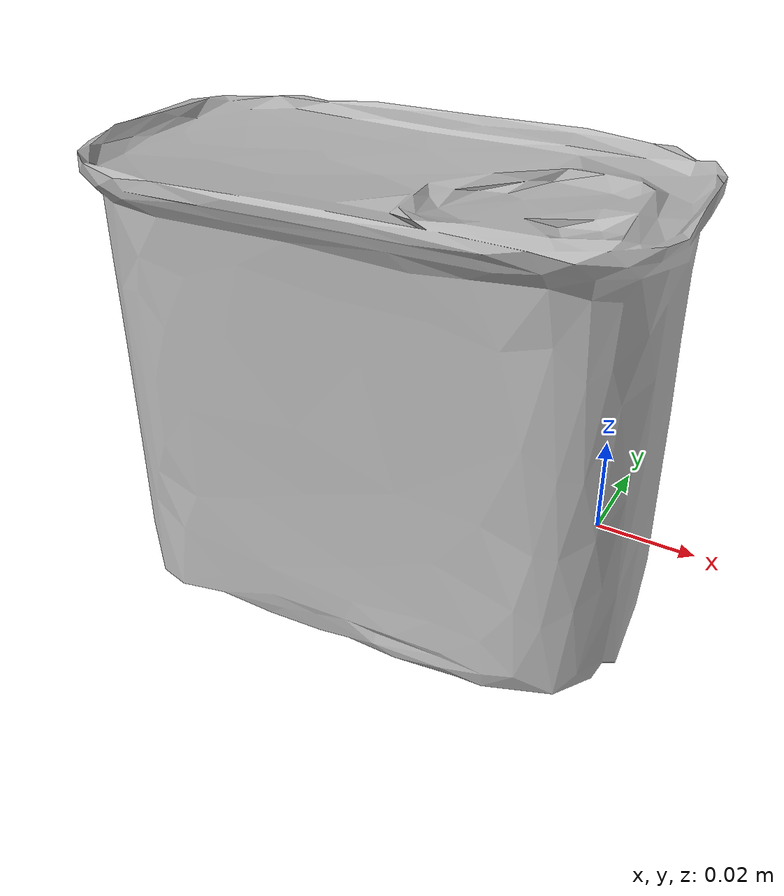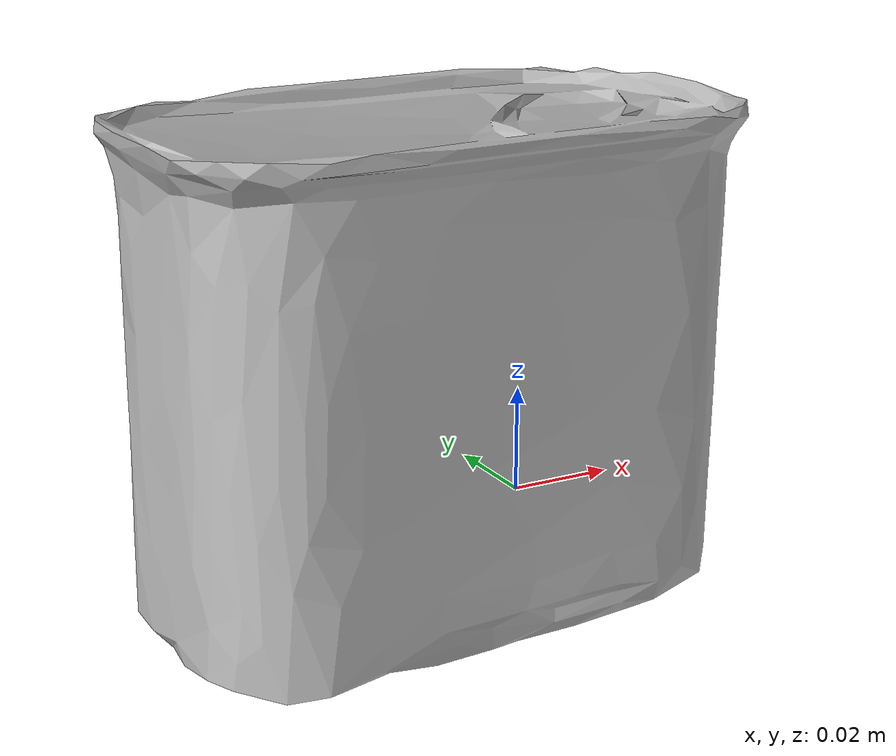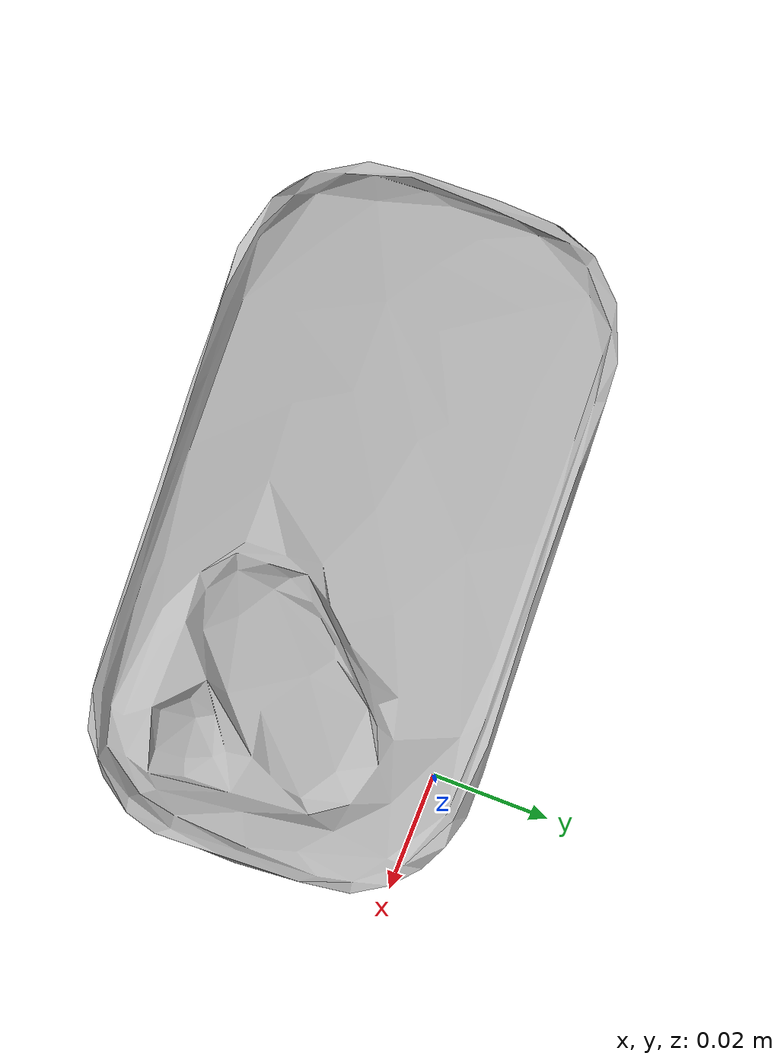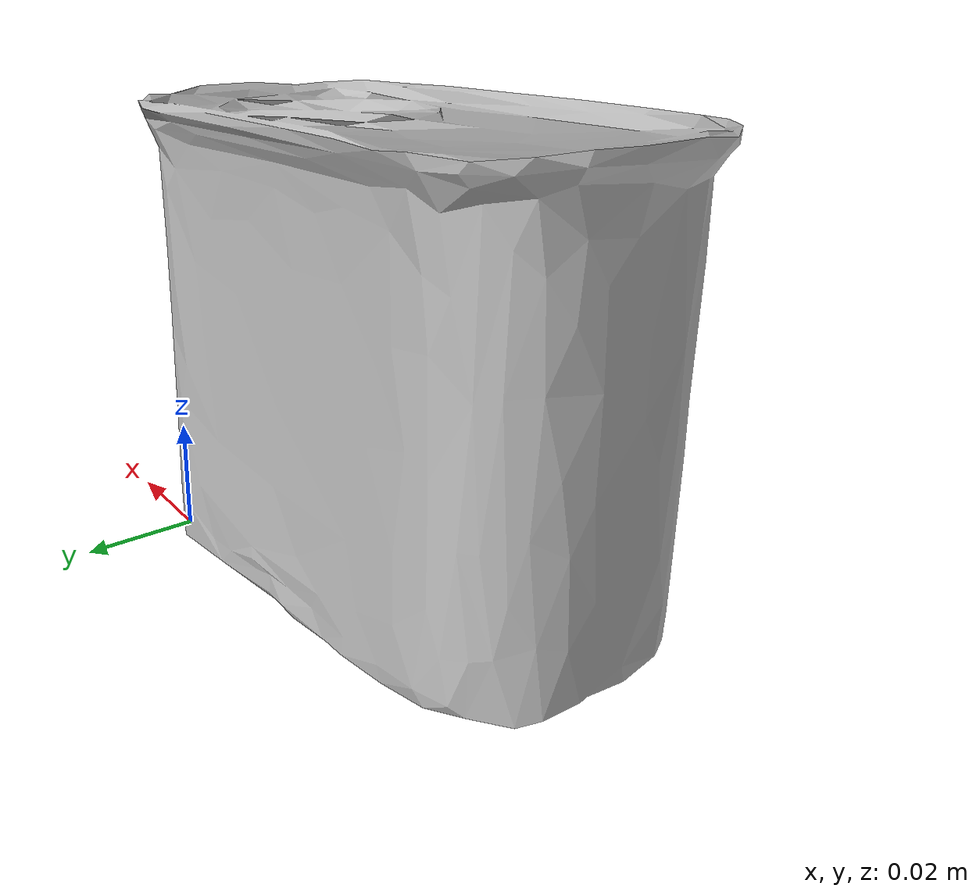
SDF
<?xml version="1.0" ?>
<sdf version="1.4">
  <model name='ycb_010_potted_meat_can'>
    <link name='body'>
      <inertial>
        <mass>0.37</mass>
        <pose>-0.0328403521507 -0.0263527143995 0.0378308500124 0 0 0</pose>
        <inertia>
          <ixx>0.000260993849515</ixx>
          <ixy>-1.03006817178e-05</ixy>
          <ixz>-5.74562886527e-07</ixz>
          <iyy>0.00044736775769</iyy>
          <iyz>1.16090890058e-06</iyz>
          <izz>0.00033728304069</izz>
        </inertia>
      </inertial>
      <visual name='ycb_010_potted_meat_can_visual'>
        <pose>0 0 0 0 0 0</pose>
        <geometry>
          <mesh>
            <uri>model://ycb_010_potted_meat_can/meshes/textured.dae</uri>
          </mesh>
        </geometry>
      </visual>
      <collision name='ycb_010_potted_meat_can_collision'>
        <pose>0 0 0 0 0 0</pose>
        <geometry>
          <mesh>
            <uri>model://ycb_010_potted_meat_can/meshes/nontextured.stl</uri>
          </mesh>
        </geometry>
        <max_contacts>10</max_contacts>
        <surface>
          <contact>
            <ode>
              <kp>1e15</kp>
              <kd>1e13</kd>
            </ode>
          </contact>
        </surface>
      </collision>
    </link>
  </model>
</sdf>
